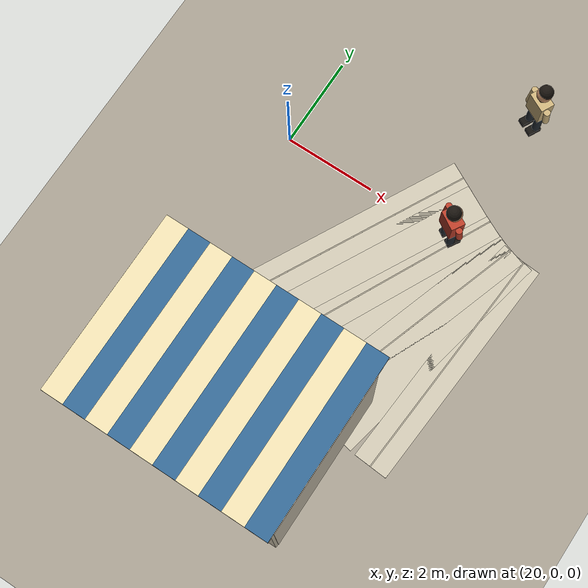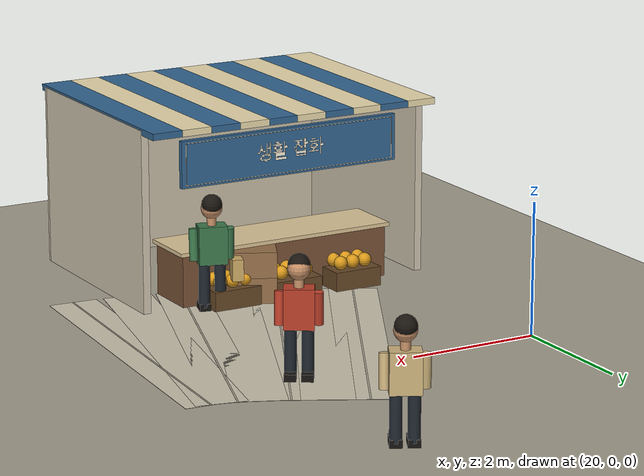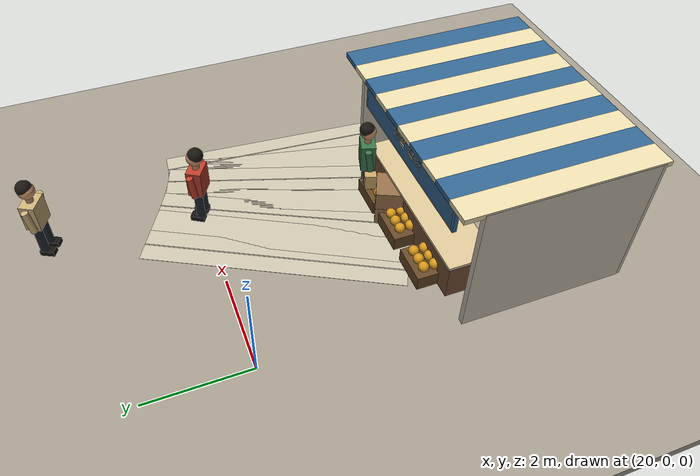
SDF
<sdf version="1.10">
 <world name="swan_town">
  <model name="ground_plane">
   <pose>-14 30 -0.025 0 0 0</pose>
   <static>true</static>
   <link name="link">
    <collision name="collision">
     <geometry><plane><normal>0 0 1</normal><size>100 100</size></plane></geometry>
    </collision>
    <visual name="visual">
     <geometry><plane><normal>0 0 1</normal><size>100 100</size></plane></geometry>
     <material><ambient>0.3 0.5 0.2 1</ambient><diffuse>0.3 0.5 0.2 1</diffuse></material>
    </visual>
   </link>
  </model>
  <model name="ground">
   <static>true</static>
   <pose>15 0 -0.1 0 0 0</pose>
   <link name="body">
    <collision name="box_collision"><geometry><box><size>46 24 0.2</size></box></geometry></collision>
    <visual name="box_visual">
     <geometry><box><size>46 24 0.2</size></box></geometry>
     <material><ambient>0.64 0.61 0.55 1</ambient><diffuse>0.64 0.61 0.55 1</diffuse></material>
    </visual>
   </link>
  </model>
  <model name="market_paving_48">
   <static>true</static>
   <pose>22.25 -1.0326 0.002 0 0 -0.48375</pose>
   <link name="body">
    <visual name="box_visual">
     <geometry><box><size>0.75 5.2 0.004</size></box></geometry>
     <material><ambient>0.79 0.76 0.68 1</ambient><diffuse>0.79 0.76 0.68 1</diffuse></material>
    </visual>
   </link>
  </model>
  <model name="paving_joint_48">
   <static>true</static>
   <pose>22.25 -1.0326 0.0045 0 0 -0.48375</pose>
   <link name="body">
    <visual name="box_visual">
     <geometry><box><size>0.025 5.2 0.001</size></box></geometry>
     <material><ambient>0.67 0.64 0.57 1</ambient><diffuse>0.67 0.64 0.57 1</diffuse></material>
    </visual>
   </link>
  </model>
  <model name="market_paving_49">
   <static>true</static>
   <pose>22.75 -1.2978 0.002 0 0 -0.48699</pose>
   <link name="body">
    <visual name="box_visual">
     <geometry><box><size>0.75 5.2 0.004</size></box></geometry>
     <material><ambient>0.79 0.76 0.68 1</ambient><diffuse>0.79 0.76 0.68 1</diffuse></material>
    </visual>
   </link>
  </model>
  <model name="market_paving_50">
   <static>true</static>
   <pose>23.25 -1.5562 0.002 0 0 -0.46221</pose>
   <link name="body">
    <visual name="box_visual">
     <geometry><box><size>0.75 5.2 0.004</size></box></geometry>
     <material><ambient>0.79 0.76 0.68 1</ambient><diffuse>0.79 0.76 0.68 1</diffuse></material>
    </visual>
   </link>
  </model>
  <model name="paving_joint_50">
   <static>true</static>
   <pose>23.25 -1.5562 0.0045 0 0 -0.46221</pose>
   <link name="body">
    <visual name="box_visual">
     <geometry><box><size>0.025 5.2 0.001</size></box></geometry>
     <material><ambient>0.67 0.64 0.57 1</ambient><diffuse>0.67 0.64 0.57 1</diffuse></material>
    </visual>
   </link>
  </model>
  <model name="market_paving_51">
   <static>true</static>
   <pose>23.75 -1.7901 0.002 0 0 -0.40758</pose>
   <link name="body">
    <visual name="box_visual">
     <geometry><box><size>0.75 5.2 0.004</size></box></geometry>
     <material><ambient>0.79 0.76 0.68 1</ambient><diffuse>0.79 0.76 0.68 1</diffuse></material>
    </visual>
   </link>
  </model>
  <model name="market_paving_52">
   <static>true</static>
   <pose>24.25 -1.9827 0.002 0 0 -0.32217</pose>
   <link name="body">
    <visual name="box_visual">
     <geometry><box><size>0.75 5.2 0.004</size></box></geometry>
     <material><ambient>0.79 0.76 0.68 1</ambient><diffuse>0.79 0.76 0.68 1</diffuse></material>
    </visual>
   </link>
  </model>
  <model name="paving_joint_52">
   <static>true</static>
   <pose>24.25 -1.9827 0.0045 0 0 -0.32217</pose>
   <link name="body">
    <visual name="box_visual">
     <geometry><box><size>0.025 5.2 0.001</size></box></geometry>
     <material><ambient>0.67 0.64 0.57 1</ambient><diffuse>0.67 0.64 0.57 1</diffuse></material>
    </visual>
   </link>
  </model>
  <model name="market_paving_53">
   <static>true</static>
   <pose>24.75 -2.1197 0.002 0 0 -0.2079</pose>
   <link name="body">
    <visual name="box_visual">
     <geometry><box><size>0.75 5.2 0.004</size></box></geometry>
     <material><ambient>0.79 0.76 0.68 1</ambient><diffuse>0.79 0.76 0.68 1</diffuse></material>
    </visual>
   </link>
  </model>
  <model name="market_paving_54">
   <static>true</static>
   <pose>25.25 -2.191 0.002 0 0 -0.072021</pose>
   <link name="body">
    <visual name="box_visual">
     <geometry><box><size>0.75 5.2 0.004</size></box></geometry>
     <material><ambient>0.79 0.76 0.68 1</ambient><diffuse>0.79 0.76 0.68 1</diffuse></material>
    </visual>
   </link>
  </model>
  <model name="paving_joint_54">
   <static>true</static>
   <pose>25.25 -2.191 0.0045 0 0 -0.072021</pose>
   <link name="body">
    <visual name="box_visual">
     <geometry><box><size>0.025 5.2 0.001</size></box></geometry>
     <material><ambient>0.67 0.64 0.57 1</ambient><diffuse>0.67 0.64 0.57 1</diffuse></material>
    </visual>
   </link>
  </model>
  <model name="stall_06">
   <static>true</static>
   <pose>22 -5.3529 0 0 0 0</pose>
   <link name="body">
    <collision name="rear_collision">
     <pose>0 -1.65 1.4 0 0 0</pose>
     <geometry><box><size>4.8 0.15 2.8</size></box></geometry>
    </collision>
    <visual name="rear_visual">
     <pose>0 -1.65 1.4 0 0 0</pose>
     <geometry><box><size>4.8 0.15 2.8</size></box></geometry>
     <material><ambient>0.78 0.74 0.65 1</ambient><diffuse>0.78 0.74 0.65 1</diffuse></material>
    </visual>
    <collision name="side_-2.35_collision">
     <pose>-2.35 0 1.4 0 0 0</pose>
     <geometry><box><size>0.12 3.3 2.8</size></box></geometry>
    </collision>
    <visual name="side_-2.35_visual">
     <pose>-2.35 0 1.4 0 0 0</pose>
     <geometry><box><size>0.12 3.3 2.8</size></box></geometry>
     <material><ambient>0.81 0.77 0.69 1</ambient><diffuse>0.81 0.77 0.69 1</diffuse></material>
    </visual>
    <collision name="side_2.35_collision">
     <pose>2.35 0 1.4 0 0 0</pose>
     <geometry><box><size>0.12 3.3 2.8</size></box></geometry>
    </collision>
    <visual name="side_2.35_visual">
     <pose>2.35 0 1.4 0 0 0</pose>
     <geometry><box><size>0.12 3.3 2.8</size></box></geometry>
     <material><ambient>0.81 0.77 0.69 1</ambient><diffuse>0.81 0.77 0.69 1</diffuse></material>
    </visual>
    <collision name="counter_collision">
     <pose>0 1.22 0.4 0 0 0</pose>
     <geometry><box><size>3.5 0.85 0.8</size></box></geometry>
    </collision>
    <visual name="counter_visual">
     <pose>0 1.22 0.4 0 0 0</pose>
     <geometry><box><size>3.5 0.85 0.8</size></box></geometry>
     <material><ambient>0.47 0.32 0.21 1</ambient><diffuse>0.47 0.32 0.21 1</diffuse></material>
    </visual>
    <collision name="counter_top_collision">
     <pose>0 1.22 0.83 0 0 0</pose>
     <geometry><box><size>3.6 0.95 0.06</size></box></geometry>
    </collision>
    <visual name="counter_top_visual">
     <pose>0 1.22 0.83 0 0 0</pose>
     <geometry><box><size>3.6 0.95 0.06</size></box></geometry>
     <material><ambient>0.86 0.77 0.59 1</ambient><diffuse>0.86 0.77 0.59 1</diffuse></material>
    </visual>
    <collision name="awning_0_collision">
     <pose>-2.16 0.1 2.78 0 0 0</pose>
     <geometry><box><size>0.48 3.85 0.1</size></box></geometry>
    </collision>
    <visual name="awning_0_visual">
     <pose>-2.16 0.1 2.78 0 0 0</pose>
     <geometry><box><size>0.48 3.85 0.1</size></box></geometry>
     <material><ambient>0.92 0.86 0.68 1</ambient><diffuse>0.92 0.86 0.68 1</diffuse></material>
    </visual>
    <collision name="awning_1_collision">
     <pose>-1.68 0.1 2.78 0 0 0</pose>
     <geometry><box><size>0.48 3.85 0.1</size></box></geometry>
    </collision>
    <visual name="awning_1_visual">
     <pose>-1.68 0.1 2.78 0 0 0</pose>
     <geometry><box><size>0.48 3.85 0.1</size></box></geometry>
     <material><ambient>0.2 0.4 0.57 1</ambient><diffuse>0.2 0.4 0.57 1</diffuse></material>
    </visual>
    <collision name="awning_2_collision">
     <pose>-1.2 0.1 2.78 0 0 0</pose>
     <geometry><box><size>0.48 3.85 0.1</size></box></geometry>
    </collision>
    <visual name="awning_2_visual">
     <pose>-1.2 0.1 2.78 0 0 0</pose>
     <geometry><box><size>0.48 3.85 0.1</size></box></geometry>
     <material><ambient>0.92 0.86 0.68 1</ambient><diffuse>0.92 0.86 0.68 1</diffuse></material>
    </visual>
    <collision name="awning_3_collision">
     <pose>-0.72 0.1 2.78 0 0 0</pose>
     <geometry><box><size>0.48 3.85 0.1</size></box></geometry>
    </collision>
    <visual name="awning_3_visual">
     <pose>-0.72 0.1 2.78 0 0 0</pose>
     <geometry><box><size>0.48 3.85 0.1</size></box></geometry>
     <material><ambient>0.2 0.4 0.57 1</ambient><diffuse>0.2 0.4 0.57 1</diffuse></material>
    </visual>
    <collision name="awning_4_collision">
     <pose>-0.24 0.1 2.78 0 0 0</pose>
     <geometry><box><size>0.48 3.85 0.1</size></box></geometry>
    </collision>
    <visual name="awning_4_visual">
     <pose>-0.24 0.1 2.78 0 0 0</pose>
     <geometry><box><size>0.48 3.85 0.1</size></box></geometry>
     <material><ambient>0.92 0.86 0.68 1</ambient><diffuse>0.92 0.86 0.68 1</diffuse></material>
    </visual>
    <collision name="awning_5_collision">
     <pose>0.24 0.1 2.78 0 0 0</pose>
     <geometry><box><size>0.48 3.85 0.1</size></box></geometry>
    </collision>
    <visual name="awning_5_visual">
     <pose>0.24 0.1 2.78 0 0 0</pose>
     <geometry><box><size>0.48 3.85 0.1</size></box></geometry>
     <material><ambient>0.2 0.4 0.57 1</ambient><diffuse>0.2 0.4 0.57 1</diffuse></material>
    </visual>
    <collision name="awning_6_collision">
     <pose>0.72 0.1 2.78 0 0 0</pose>
     <geometry><box><size>0.48 3.85 0.1</size></box></geometry>
    </collision>
    <visual name="awning_6_visual">
     <pose>0.72 0.1 2.78 0 0 0</pose>
     <geometry><box><size>0.48 3.85 0.1</size></box></geometry>
     <material><ambient>0.92 0.86 0.68 1</ambient><diffuse>0.92 0.86 0.68 1</diffuse></material>
    </visual>
    <collision name="awning_7_collision">
     <pose>1.2 0.1 2.78 0 0 0</pose>
     <geometry><box><size>0.48 3.85 0.1</size></box></geometry>
    </collision>
    <visual name="awning_7_visual">
     <pose>1.2 0.1 2.78 0 0 0</pose>
     <geometry><box><size>0.48 3.85 0.1</size></box></geometry>
     <material><ambient>0.2 0.4 0.57 1</ambient><diffuse>0.2 0.4 0.57 1</diffuse></material>
    </visual>
    <collision name="awning_8_collision">
     <pose>1.68 0.1 2.78 0 0 0</pose>
     <geometry><box><size>0.48 3.85 0.1</size></box></geometry>
    </collision>
    <visual name="awning_8_visual">
     <pose>1.68 0.1 2.78 0 0 0</pose>
     <geometry><box><size>0.48 3.85 0.1</size></box></geometry>
     <material><ambient>0.92 0.86 0.68 1</ambient><diffuse>0.92 0.86 0.68 1</diffuse></material>
    </visual>
    <collision name="awning_9_collision">
     <pose>2.16 0.1 2.78 0 0 0</pose>
     <geometry><box><size>0.48 3.85 0.1</size></box></geometry>
    </collision>
    <visual name="awning_9_visual">
     <pose>2.16 0.1 2.78 0 0 0</pose>
     <geometry><box><size>0.48 3.85 0.1</size></box></geometry>
     <material><ambient>0.2 0.4 0.57 1</ambient><diffuse>0.2 0.4 0.57 1</diffuse></material>
    </visual>
    <collision name="crate_-1_collision">
     <pose>-1.04 1.77 0.15 0 0 0</pose>
     <geometry><box><size>0.78 0.6 0.3</size></box></geometry>
    </collision>
    <visual name="crate_-1_visual">
     <pose>-1.04 1.77 0.15 0 0 0</pose>
     <geometry><box><size>0.78 0.6 0.3</size></box></geometry>
     <material><ambient>0.4 0.28 0.15 1</ambient><diffuse>0.4 0.28 0.15 1</diffuse></material>
    </visual>
    <visual name="produce_-1_0_visual">
     <pose>-1.25 1.66 0.39 0 0 0</pose>
     <geometry><sphere><radius>0.105</radius></sphere></geometry>
     <material><ambient>0.84 0.59 0.1 1</ambient><diffuse>0.84 0.59 0.1 1</diffuse></material>
    </visual>
    <visual name="produce_-1_1_visual">
     <pose>-1.04 1.66 0.39 0 0 0</pose>
     <geometry><sphere><radius>0.105</radius></sphere></geometry>
     <material><ambient>0.84 0.59 0.1 1</ambient><diffuse>0.84 0.59 0.1 1</diffuse></material>
    </visual>
    <visual name="produce_-1_2_visual">
     <pose>-0.83 1.66 0.39 0 0 0</pose>
     <geometry><sphere><radius>0.105</radius></sphere></geometry>
     <material><ambient>0.84 0.59 0.1 1</ambient><diffuse>0.84 0.59 0.1 1</diffuse></material>
    </visual>
    <visual name="produce_-1_3_visual">
     <pose>-1.25 1.88 0.39 0 0 0</pose>
     <geometry><sphere><radius>0.105</radius></sphere></geometry>
     <material><ambient>0.84 0.59 0.1 1</ambient><diffuse>0.84 0.59 0.1 1</diffuse></material>
    </visual>
    <visual name="produce_-1_4_visual">
     <pose>-1.04 1.88 0.39 0 0 0</pose>
     <geometry><sphere><radius>0.105</radius></sphere></geometry>
     <material><ambient>0.84 0.59 0.1 1</ambient><diffuse>0.84 0.59 0.1 1</diffuse></material>
    </visual>
    <visual name="produce_-1_5_visual">
     <pose>-0.83 1.88 0.39 0 0 0</pose>
     <geometry><sphere><radius>0.105</radius></sphere></geometry>
     <material><ambient>0.84 0.59 0.1 1</ambient><diffuse>0.84 0.59 0.1 1</diffuse></material>
    </visual>
    <collision name="crate_0_collision">
     <pose>0 1.77 0.15 0 0 0</pose>
     <geometry><box><size>0.78 0.6 0.3</size></box></geometry>
    </collision>
    <visual name="crate_0_visual">
     <pose>0 1.77 0.15 0 0 0</pose>
     <geometry><box><size>0.78 0.6 0.3</size></box></geometry>
     <material><ambient>0.4 0.28 0.15 1</ambient><diffuse>0.4 0.28 0.15 1</diffuse></material>
    </visual>
    <visual name="produce_0_0_visual">
     <pose>-0.21 1.66 0.39 0 0 0</pose>
     <geometry><sphere><radius>0.105</radius></sphere></geometry>
     <material><ambient>0.84 0.59 0.1 1</ambient><diffuse>0.84 0.59 0.1 1</diffuse></material>
    </visual>
    <visual name="produce_0_1_visual">
     <pose>0 1.66 0.39 0 0 0</pose>
     <geometry><sphere><radius>0.105</radius></sphere></geometry>
     <material><ambient>0.84 0.59 0.1 1</ambient><diffuse>0.84 0.59 0.1 1</diffuse></material>
    </visual>
    <visual name="produce_0_2_visual">
     <pose>0.21 1.66 0.39 0 0 0</pose>
     <geometry><sphere><radius>0.105</radius></sphere></geometry>
     <material><ambient>0.84 0.59 0.1 1</ambient><diffuse>0.84 0.59 0.1 1</diffuse></material>
    </visual>
    <visual name="produce_0_3_visual">
     <pose>-0.21 1.88 0.39 0 0 0</pose>
     <geometry><sphere><radius>0.105</radius></sphere></geometry>
     <material><ambient>0.84 0.59 0.1 1</ambient><diffuse>0.84 0.59 0.1 1</diffuse></material>
    </visual>
    <visual name="produce_0_4_visual">
     <pose>0 1.88 0.39 0 0 0</pose>
     <geometry><sphere><radius>0.105</radius></sphere></geometry>
     <material><ambient>0.84 0.59 0.1 1</ambient><diffuse>0.84 0.59 0.1 1</diffuse></material>
    </visual>
    <visual name="produce_0_5_visual">
     <pose>0.21 1.88 0.39 0 0 0</pose>
     <geometry><sphere><radius>0.105</radius></sphere></geometry>
     <material><ambient>0.84 0.59 0.1 1</ambient><diffuse>0.84 0.59 0.1 1</diffuse></material>
    </visual>
    <collision name="crate_1_collision">
     <pose>1.04 1.77 0.15 0 0 0</pose>
     <geometry><box><size>0.78 0.6 0.3</size></box></geometry>
    </collision>
    <visual name="crate_1_visual">
     <pose>1.04 1.77 0.15 0 0 0</pose>
     <geometry><box><size>0.78 0.6 0.3</size></box></geometry>
     <material><ambient>0.4 0.28 0.15 1</ambient><diffuse>0.4 0.28 0.15 1</diffuse></material>
    </visual>
    <visual name="produce_1_0_visual">
     <pose>0.83 1.66 0.39 0 0 0</pose>
     <geometry><sphere><radius>0.105</radius></sphere></geometry>
     <material><ambient>0.84 0.59 0.1 1</ambient><diffuse>0.84 0.59 0.1 1</diffuse></material>
    </visual>
    <visual name="produce_1_1_visual">
     <pose>1.04 1.66 0.39 0 0 0</pose>
     <geometry><sphere><radius>0.105</radius></sphere></geometry>
     <material><ambient>0.84 0.59 0.1 1</ambient><diffuse>0.84 0.59 0.1 1</diffuse></material>
    </visual>
    <visual name="produce_1_2_visual">
     <pose>1.25 1.66 0.39 0 0 0</pose>
     <geometry><sphere><radius>0.105</radius></sphere></geometry>
     <material><ambient>0.84 0.59 0.1 1</ambient><diffuse>0.84 0.59 0.1 1</diffuse></material>
    </visual>
    <visual name="produce_1_3_visual">
     <pose>0.83 1.88 0.39 0 0 0</pose>
     <geometry><sphere><radius>0.105</radius></sphere></geometry>
     <material><ambient>0.84 0.59 0.1 1</ambient><diffuse>0.84 0.59 0.1 1</diffuse></material>
    </visual>
    <visual name="produce_1_4_visual">
     <pose>1.04 1.88 0.39 0 0 0</pose>
     <geometry><sphere><radius>0.105</radius></sphere></geometry>
     <material><ambient>0.84 0.59 0.1 1</ambient><diffuse>0.84 0.59 0.1 1</diffuse></material>
    </visual>
    <visual name="produce_1_5_visual">
     <pose>1.25 1.88 0.39 0 0 0</pose>
     <geometry><sphere><radius>0.105</radius></sphere></geometry>
     <material><ambient>0.84 0.59 0.1 1</ambient><diffuse>0.84 0.59 0.1 1</diffuse></material>
    </visual>
   </link>
  </model>
  <model name="signboard_6">
   <static>true</static>
   <pose>22 -3.5929 2.24 0 0 0</pose>
   <link name="body">
    <collision name="box_collision"><geometry><box><size>3.65 0.08 0.72</size></box></geometry></collision>
    <visual name="box_visual">
     <geometry><box><size>3.65 0.08 0.72</size></box></geometry>
     <material><ambient>0.2 0.4 0.57 1</ambient><diffuse>0.2 0.4 0.57 1</diffuse></material>
    </visual>
   </link>
  </model>
  <model name="sign_shop_6">
   <static>true</static>
   <pose>22 -3.5449 2.24 0 0 -3.14158530718</pose>
   <link name="body">
    <visual name="top_visual">
     <pose>0 -0.003 0.32062 0 0 0</pose>
     <geometry><box><size>3.5136 0.003 0.0108</size></box></geometry>
     <material><ambient>1 0.961 0.875 1</ambient><diffuse>1 0.961 0.875 1</diffuse></material>
    </visual>
    <visual name="bottom_visual">
     <pose>0 -0.003 -0.32062 0 0 0</pose>
     <geometry><box><size>3.5136 0.003 0.0108</size></box></geometry>
     <material><ambient>1 0.961 0.875 1</ambient><diffuse>1 0.961 0.875 1</diffuse></material>
    </visual>
    <visual name="left_visual">
     <pose>-1.7568 -0.003 0 0 0 0</pose>
     <geometry><box><size>0.0108 0.003 0.64125</size></box></geometry>
     <material><ambient>1 0.961 0.875 1</ambient><diffuse>1 0.961 0.875 1</diffuse></material>
    </visual>
    <visual name="right_visual">
     <pose>1.7568 -0.003 0 0 0 0</pose>
     <geometry><box><size>0.0108 0.003 0.64125</size></box></geometry>
     <material><ambient>1 0.961 0.875 1</ambient><diffuse>1 0.961 0.875 1</diffuse></material>
    </visual>
    <visual name="ink_0_visual">
     <pose>-0.225 -0.003 0.15938 0 0 0</pose>
     <geometry><box><size>0.075 0.003 0.01875</size></box></geometry>
     <material><ambient>1 0.961 0.875 1</ambient><diffuse>1 0.961 0.875 1</diffuse></material>
    </visual>
    <visual name="ink_1_visual">
     <pose>-0.21562 -0.003 0.14062 0 0 0</pose>
     <geometry><box><size>0.05625 0.003 0.01875</size></box></geometry>
     <material><ambient>1 0.961 0.875 1</ambient><diffuse>1 0.961 0.875 1</diffuse></material>
    </visual>
    <visual name="ink_2_visual">
     <pose>0.13125 -0.003 0.14062 0 0 0</pose>
     <geometry><box><size>0.15 0.003 0.01875</size></box></geometry>
     <material><ambient>1 0.961 0.875 1</ambient><diffuse>1 0.961 0.875 1</diffuse></material>
    </visual>
    <visual name="ink_3_visual">
     <pose>0.39375 -0.003 0.14062 0 0 0</pose>
     <geometry><box><size>0.075 0.003 0.01875</size></box></geometry>
     <material><ambient>1 0.961 0.875 1</ambient><diffuse>1 0.961 0.875 1</diffuse></material>
    </visual>
    <visual name="ink_4_visual">
     <pose>-0.34688 -0.003 0.14062 0 0 0</pose>
     <geometry><box><size>0.01875 0.003 0.05625</size></box></geometry>
     <material><ambient>1 0.961 0.875 1</ambient><diffuse>1 0.961 0.875 1</diffuse></material>
    </visual>
    <visual name="ink_5_visual">
     <pose>-0.21562 -0.003 0.12188 0 0 0</pose>
     <geometry><box><size>0.16875 0.003 0.01875</size></box></geometry>
     <material><ambient>1 0.961 0.875 1</ambient><diffuse>1 0.961 0.875 1</diffuse></material>
    </visual>
    <visual name="ink_6_visual">
     <pose>0.24375 -0.003 0.14062 0 0 0</pose>
     <geometry><box><size>0.0375 0.003 0.05625</size></box></geometry>
     <material><ambient>1 0.961 0.875 1</ambient><diffuse>1 0.961 0.875 1</diffuse></material>
    </visual>
    <visual name="ink_7_visual">
     <pose>-0.49687 -0.003 0.12188 0 0 0</pose>
     <geometry><box><size>0.01875 0.003 0.05625</size></box></geometry>
     <material><ambient>1 0.961 0.875 1</ambient><diffuse>1 0.961 0.875 1</diffuse></material>
    </visual>
    <visual name="ink_8_visual">
     <pose>-0.40313 -0.003 0.13125 0 0 0</pose>
     <geometry><box><size>0.01875 0.003 0.075</size></box></geometry>
     <material><ambient>1 0.961 0.875 1</ambient><diffuse>1 0.961 0.875 1</diffuse></material>
    </visual>
    <visual name="ink_9_visual">
     <pose>-0.35625 -0.003 0.10313 0 0 0</pose>
     <geometry><box><size>0.0375 0.003 0.01875</size></box></geometry>
     <material><ambient>1 0.961 0.875 1</ambient><diffuse>1 0.961 0.875 1</diffuse></material>
    </visual>
    <visual name="ink_10_visual">
     <pose>-0.21562 -0.003 0.10313 0 0 0</pose>
     <geometry><box><size>0.09375 0.003 0.01875</size></box></geometry>
     <material><ambient>1 0.961 0.875 1</ambient><diffuse>1 0.961 0.875 1</diffuse></material>
    </visual>
    <visual name="ink_11_visual">
     <pose>-0.10312 -0.003 0.13125 0 0 0</pose>
     <geometry><box><size>0.01875 0.003 0.075</size></box></geometry>
     <material><ambient>1 0.961 0.875 1</ambient><diffuse>1 0.961 0.875 1</diffuse></material>
    </visual>
    <visual name="ink_12_visual">
     <pose>0.13125 -0.003 0.1125 0 0 0</pose>
     <geometry><box><size>0.0375 0.003 0.0375</size></box></geometry>
     <material><ambient>1 0.961 0.875 1</ambient><diffuse>1 0.961 0.875 1</diffuse></material>
    </visual>
    <visual name="ink_13_visual">
     <pose>0.40312 -0.003 0.10313 0 0 0</pose>
     <geometry><box><size>0.16875 0.003 0.01875</size></box></geometry>
     <material><ambient>1 0.961 0.875 1</ambient><diffuse>1 0.961 0.875 1</diffuse></material>
    </visual>
    <visual name="ink_14_visual">
     <pose>-0.375 -0.003 0.084375 0 0 0</pose>
     <geometry><box><size>0.075 0.003 0.01875</size></box></geometry>
     <material><ambient>1 0.961 0.875 1</ambient><diffuse>1 0.961 0.875 1</diffuse></material>
    </visual>
    <visual name="ink_15_visual">
     <pose>0.12187 -0.003 0.084375 0 0 0</pose>
     <geometry><box><size>0.05625 0.003 0.01875</size></box></geometry>
     <material><ambient>1 0.961 0.875 1</ambient><diffuse>1 0.961 0.875 1</diffuse></material>
    </visual>
    <visual name="ink_16_visual">
     <pose>0.2625 -0.003 0.09375 0 0 0</pose>
     <geometry><box><size>0.075 0.003 0.0375</size></box></geometry>
     <material><ambient>1 0.961 0.875 1</ambient><diffuse>1 0.961 0.875 1</diffuse></material>
    </visual>
    <visual name="ink_17_visual">
     <pose>0.40312 -0.003 0.084375 0 0 0</pose>
     <geometry><box><size>0.01875 0.003 0.01875</size></box></geometry>
     <material><ambient>1 0.961 0.875 1</ambient><diffuse>1 0.961 0.875 1</diffuse></material>
    </visual>
    <visual name="ink_18_visual">
     <pose>-0.49687 -0.003 0.075 0 0 0</pose>
     <geometry><box><size>0.05625 0.003 0.0375</size></box></geometry>
     <material><ambient>1 0.961 0.875 1</ambient><diffuse>1 0.961 0.875 1</diffuse></material>
    </visual>
    <visual name="ink_19_visual">
     <pose>-0.2625 -0.003 0.075 0 0 0</pose>
     <geometry><box><size>0.0375 0.003 0.0375</size></box></geometry>
     <material><ambient>1 0.961 0.875 1</ambient><diffuse>1 0.961 0.875 1</diffuse></material>
    </visual>
    <visual name="ink_20_visual">
     <pose>-0.16875 -0.003 0.075 0 0 0</pose>
     <geometry><box><size>0.0375 0.003 0.0375</size></box></geometry>
     <material><ambient>1 0.961 0.875 1</ambient><diffuse>1 0.961 0.875 1</diffuse></material>
    </visual>
    <visual name="ink_21_visual">
     <pose>-0.084375 -0.003 0.075 0 0 0</pose>
     <geometry><box><size>0.05625 0.003 0.0375</size></box></geometry>
     <material><ambient>1 0.961 0.875 1</ambient><diffuse>1 0.961 0.875 1</diffuse></material>
    </visual>
    <visual name="ink_22_visual">
     <pose>0.10313 -0.003 0.065625 0 0 0</pose>
     <geometry><box><size>0.01875 0.003 0.01875</size></box></geometry>
     <material><ambient>1 0.961 0.875 1</ambient><diffuse>1 0.961 0.875 1</diffuse></material>
    </visual>
    <visual name="ink_23_visual">
     <pose>0.15 -0.003 0.065625 0 0 0</pose>
     <geometry><box><size>0.0375 0.003 0.01875</size></box></geometry>
     <material><ambient>1 0.961 0.875 1</ambient><diffuse>1 0.961 0.875 1</diffuse></material>
    </visual>
    <visual name="ink_24_visual">
     <pose>0.40312 -0.003 0.065625 0 0 0</pose>
     <geometry><box><size>0.09375 0.003 0.01875</size></box></geometry>
     <material><ambient>1 0.961 0.875 1</ambient><diffuse>1 0.961 0.875 1</diffuse></material>
    </visual>
    <visual name="ink_25_visual">
     <pose>0.51562 -0.003 0.1125 0 0 0</pose>
     <geometry><box><size>0.01875 0.003 0.1125</size></box></geometry>
     <material><ambient>1 0.961 0.875 1</ambient><diffuse>1 0.961 0.875 1</diffuse></material>
    </visual>
    <visual name="ink_26_visual">
     <pose>-0.525 -0.003 0.046875 0 0 0</pose>
     <geometry><box><size>0.0375 0.003 0.01875</size></box></geometry>
     <material><ambient>1 0.961 0.875 1</ambient><diffuse>1 0.961 0.875 1</diffuse></material>
    </visual>
    <visual name="ink_27_visual">
     <pose>-0.45938 -0.003 0.046875 0 0 0</pose>
     <geometry><box><size>0.05625 0.003 0.01875</size></box></geometry>
     <material><ambient>1 0.961 0.875 1</ambient><diffuse>1 0.961 0.875 1</diffuse></material>
    </visual>
    <visual name="ink_28_visual">
     <pose>-0.21562 -0.003 0.046875 0 0 0</pose>
     <geometry><box><size>0.09375 0.003 0.01875</size></box></geometry>
     <material><ambient>1 0.961 0.875 1</ambient><diffuse>1 0.961 0.875 1</diffuse></material>
    </visual>
    <visual name="ink_29_visual">
     <pose>0.084375 -0.003 0.046875 0 0 0</pose>
     <geometry><box><size>0.05625 0.003 0.01875</size></box></geometry>
     <material><ambient>1 0.961 0.875 1</ambient><diffuse>1 0.961 0.875 1</diffuse></material>
    </visual>
    <visual name="ink_30_visual">
     <pose>0.17812 -0.003 0.046875 0 0 0</pose>
     <geometry><box><size>0.05625 0.003 0.01875</size></box></geometry>
     <material><ambient>1 0.961 0.875 1</ambient><diffuse>1 0.961 0.875 1</diffuse></material>
    </visual>
    <visual name="ink_31_visual">
     <pose>0.35625 -0.003 0.046875 0 0 0</pose>
     <geometry><box><size>0.0375 0.003 0.01875</size></box></geometry>
     <material><ambient>1 0.961 0.875 1</ambient><diffuse>1 0.961 0.875 1</diffuse></material>
    </visual>
    <visual name="ink_32_visual">
     <pose>-0.54375 -0.003 0.028125 0 0 0</pose>
     <geometry><box><size>0.0375 0.003 0.01875</size></box></geometry>
     <material><ambient>1 0.961 0.875 1</ambient><diffuse>1 0.961 0.875 1</diffuse></material>
    </visual>
    <visual name="ink_33_visual">
     <pose>-0.44062 -0.003 0.028125 0 0 0</pose>
     <geometry><box><size>0.01875 0.003 0.01875</size></box></geometry>
     <material><ambient>1 0.961 0.875 1</ambient><diffuse>1 0.961 0.875 1</diffuse></material>
    </visual>
    <visual name="ink_34_visual">
     <pose>-0.1875 -0.003 0.028125 0 0 0</pose>
     <geometry><box><size>0.1125 0.003 0.01875</size></box></geometry>
     <material><ambient>1 0.961 0.875 1</ambient><diffuse>1 0.961 0.875 1</diffuse></material>
    </visual>
    <visual name="ink_35_visual">
     <pose>0.065625 -0.003 0.028125 0 0 0</pose>
     <geometry><box><size>0.01875 0.003 0.01875</size></box></geometry>
     <material><ambient>1 0.961 0.875 1</ambient><diffuse>1 0.961 0.875 1</diffuse></material>
    </visual>
    <visual name="ink_36_visual">
     <pose>0.1875 -0.003 0.028125 0 0 0</pose>
     <geometry><box><size>0.0375 0.003 0.01875</size></box></geometry>
     <material><ambient>1 0.961 0.875 1</ambient><diffuse>1 0.961 0.875 1</diffuse></material>
    </visual>
    <visual name="ink_37_visual">
     <pose>0.24375 -0.003 0.046875 0 0 0</pose>
     <geometry><box><size>0.0375 0.003 0.05625</size></box></geometry>
     <material><ambient>1 0.961 0.875 1</ambient><diffuse>1 0.961 0.875 1</diffuse></material>
    </visual>
    <visual name="ink_38_visual">
     <pose>0.34687 -0.003 0.028125 0 0 0</pose>
     <geometry><box><size>0.01875 0.003 0.01875</size></box></geometry>
     <material><ambient>1 0.961 0.875 1</ambient><diffuse>1 0.961 0.875 1</diffuse></material>
    </visual>
    <visual name="ink_39_visual">
     <pose>0.45 -0.003 0.0375 0 0 0</pose>
     <geometry><box><size>0.0375 0.003 0.0375</size></box></geometry>
     <material><ambient>1 0.961 0.875 1</ambient><diffuse>1 0.961 0.875 1</diffuse></material>
    </visual>
    <visual name="ink_40_visual">
     <pose>0.53438 -0.003 0.0375 0 0 0</pose>
     <geometry><box><size>0.05625 0.003 0.0375</size></box></geometry>
     <material><ambient>1 0.961 0.875 1</ambient><diffuse>1 0.961 0.875 1</diffuse></material>
    </visual>
    <visual name="ink_41_visual">
     <pose>-0.40313 -0.003 0.0375 0 0 0</pose>
     <geometry><box><size>0.01875 0.003 0.075</size></box></geometry>
     <material><ambient>1 0.961 0.875 1</ambient><diffuse>1 0.961 0.875 1</diffuse></material>
    </visual>
    <visual name="ink_42_visual">
     <pose>-0.34688 -0.003 0.0375 0 0 0</pose>
     <geometry><box><size>0.01875 0.003 0.075</size></box></geometry>
     <material><ambient>1 0.961 0.875 1</ambient><diffuse>1 0.961 0.875 1</diffuse></material>
    </visual>
    <visual name="ink_43_visual">
     <pose>-0.225 -0.003 0.009375 0 0 0</pose>
     <geometry><box><size>0.15 0.003 0.01875</size></box></geometry>
     <material><ambient>1 0.961 0.875 1</ambient><diffuse>1 0.961 0.875 1</diffuse></material>
    </visual>
    <visual name="ink_44_visual">
     <pose>-0.10312 -0.003 0.028125 0 0 0</pose>
     <geometry><box><size>0.01875 0.003 0.05625</size></box></geometry>
     <material><ambient>1 0.961 0.875 1</ambient><diffuse>1 0.961 0.875 1</diffuse></material>
    </visual>
    <visual name="ink_45_visual">
     <pose>0.10313 -0.003 0.009375 0 0 0</pose>
     <geometry><box><size>0.01875 0.003 0.01875</size></box></geometry>
     <material><ambient>1 0.961 0.875 1</ambient><diffuse>1 0.961 0.875 1</diffuse></material>
    </visual>
    <visual name="ink_46_visual">
     <pose>0.39375 -0.003 0.009375 0 0 0</pose>
     <geometry><box><size>0.1125 0.003 0.01875</size></box></geometry>
     <material><ambient>1 0.961 0.875 1</ambient><diffuse>1 0.961 0.875 1</diffuse></material>
    </visual>
    <visual name="ink_47_visual">
     <pose>-0.42188 -0.003 -0.009375 0 0 0</pose>
     <geometry><box><size>0.13125 0.003 0.01875</size></box></geometry>
     <material><ambient>1 0.961 0.875 1</ambient><diffuse>1 0.961 0.875 1</diffuse></material>
    </visual>
    <visual name="ink_48_visual">
     <pose>0.09375 -0.003 -0.009375 0 0 0</pose>
     <geometry><box><size>0.0375 0.003 0.01875</size></box></geometry>
     <material><ambient>1 0.961 0.875 1</ambient><diffuse>1 0.961 0.875 1</diffuse></material>
    </visual>
    <visual name="ink_49_visual">
     <pose>0.24375 -0.003 -0.009375 0 0 0</pose>
     <geometry><box><size>0.0375 0.003 0.01875</size></box></geometry>
     <material><ambient>1 0.961 0.875 1</ambient><diffuse>1 0.961 0.875 1</diffuse></material>
    </visual>
    <visual name="ink_50_visual">
     <pose>0.40312 -0.003 -0.009375 0 0 0</pose>
     <geometry><box><size>0.05625 0.003 0.01875</size></box></geometry>
     <material><ambient>1 0.961 0.875 1</ambient><diffuse>1 0.961 0.875 1</diffuse></material>
    </visual>
    <visual name="ink_51_visual">
     <pose>-0.47813 -0.003 -0.028125 0 0 0</pose>
     <geometry><box><size>0.05625 0.003 0.01875</size></box></geometry>
     <material><ambient>1 0.961 0.875 1</ambient><diffuse>1 0.961 0.875 1</diffuse></material>
    </visual>
    <visual name="ink_52_visual">
     <pose>-0.36563 -0.003 -0.028125 0 0 0</pose>
     <geometry><box><size>0.05625 0.003 0.01875</size></box></geometry>
     <material><ambient>1 0.961 0.875 1</ambient><diffuse>1 0.961 0.875 1</diffuse></material>
    </visual>
    <visual name="ink_53_visual">
     <pose>0.39375 -0.003 -0.028125 0 0 0</pose>
     <geometry><box><size>0.0375 0.003 0.01875</size></box></geometry>
     <material><ambient>1 0.961 0.875 1</ambient><diffuse>1 0.961 0.875 1</diffuse></material>
    </visual>
    <visual name="ink_54_visual">
     <pose>-0.34688 -0.003 -0.046875 0 0 0</pose>
     <geometry><box><size>0.01875 0.003 0.01875</size></box></geometry>
     <material><ambient>1 0.961 0.875 1</ambient><diffuse>1 0.961 0.875 1</diffuse></material>
    </visual>
    <visual name="ink_55_visual">
     <pose>-0.17813 -0.003 -0.028125 0 0 0</pose>
     <geometry><box><size>0.16875 0.003 0.05625</size></box></geometry>
     <material><ambient>1 0.961 0.875 1</ambient><diffuse>1 0.961 0.875 1</diffuse></material>
    </visual>
    <visual name="ink_56_visual">
     <pose>0.17812 -0.003 -0.0375 0 0 0</pose>
     <geometry><box><size>0.16875 0.003 0.0375</size></box></geometry>
     <material><ambient>1 0.961 0.875 1</ambient><diffuse>1 0.961 0.875 1</diffuse></material>
    </visual>
    <visual name="ink_57_visual">
     <pose>0.40312 -0.003 -0.046875 0 0 0</pose>
     <geometry><box><size>0.16875 0.003 0.01875</size></box></geometry>
     <material><ambient>1 0.961 0.875 1</ambient><diffuse>1 0.961 0.875 1</diffuse></material>
    </visual>
    <visual name="ink_58_visual">
     <pose>-0.50625 -0.003 -0.05625 0 0 0</pose>
     <geometry><box><size>0.0375 0.003 0.0375</size></box></geometry>
     <material><ambient>1 0.961 0.875 1</ambient><diffuse>1 0.961 0.875 1</diffuse></material>
    </visual>
    <visual name="ink_59_visual">
     <pose>-0.35625 -0.003 -0.065625 0 0 0</pose>
     <geometry><box><size>0.0375 0.003 0.01875</size></box></geometry>
     <material><ambient>1 0.961 0.875 1</ambient><diffuse>1 0.961 0.875 1</diffuse></material>
    </visual>
    <visual name="ink_60_visual">
     <pose>-0.24375 -0.003 -0.065625 0 0 0</pose>
     <geometry><box><size>0.0375 0.003 0.01875</size></box></geometry>
     <material><ambient>1 0.961 0.875 1</ambient><diffuse>1 0.961 0.875 1</diffuse></material>
    </visual>
    <visual name="ink_61_visual">
     <pose>0.10313 -0.003 -0.065625 0 0 0</pose>
     <geometry><box><size>0.01875 0.003 0.01875</size></box></geometry>
     <material><ambient>1 0.961 0.875 1</ambient><diffuse>1 0.961 0.875 1</diffuse></material>
    </visual>
    <visual name="ink_62_visual">
     <pose>0.24375 -0.003 -0.065625 0 0 0</pose>
     <geometry><box><size>0.0375 0.003 0.01875</size></box></geometry>
     <material><ambient>1 0.961 0.875 1</ambient><diffuse>1 0.961 0.875 1</diffuse></material>
    </visual>
    <visual name="ink_63_visual">
     <pose>-0.43125 -0.003 -0.084375 0 0 0</pose>
     <geometry><box><size>0.15 0.003 0.01875</size></box></geometry>
     <material><ambient>1 0.961 0.875 1</ambient><diffuse>1 0.961 0.875 1</diffuse></material>
    </visual>
    <visual name="ink_64_visual">
     <pose>0.17812 -0.003 -0.084375 0 0 0</pose>
     <geometry><box><size>0.16875 0.003 0.01875</size></box></geometry>
     <material><ambient>1 0.961 0.875 1</ambient><diffuse>1 0.961 0.875 1</diffuse></material>
    </visual>
    <visual name="ink_65_visual">
     <pose>-0.42188 -0.003 -0.10313 0 0 0</pose>
     <geometry><box><size>0.05625 0.003 0.01875</size></box></geometry>
     <material><ambient>1 0.961 0.875 1</ambient><diffuse>1 0.961 0.875 1</diffuse></material>
    </visual>
    <visual name="ink_66_visual">
     <pose>-0.16875 -0.003 -0.09375 0 0 0</pose>
     <geometry><box><size>0.1875 0.003 0.0375</size></box></geometry>
     <material><ambient>1 0.961 0.875 1</ambient><diffuse>1 0.961 0.875 1</diffuse></material>
    </visual>
    <visual name="ink_67_visual">
     <pose>0.51562 -0.003 -0.046875 0 0 0</pose>
     <geometry><box><size>0.01875 0.003 0.13125</size></box></geometry>
     <material><ambient>1 0.961 0.875 1</ambient><diffuse>1 0.961 0.875 1</diffuse></material>
    </visual>
   </link>
  </model>
  <model name="vendor_2">
   <static>true</static>
   <pose>24.024 3.06 0 0 0 -2.0431</pose>
   <link name="body">
    <collision name="leg_-1_collision">
     <pose>0 -0.12 0.4 0 0 0</pose>
     <geometry><cylinder><radius>0.085</radius><length>0.68</length></cylinder></geometry>
    </collision>
    <visual name="leg_-1_visual">
     <pose>0 -0.12 0.4 0 0 0</pose>
     <geometry><cylinder><radius>0.085</radius><length>0.68</length></cylinder></geometry>
     <material><ambient>0.12 0.15 0.18 1</ambient><diffuse>0.12 0.15 0.18 1</diffuse></material>
    </visual>
    <collision name="shoe_-1_collision">
     <pose>0.06 -0.12 0.055 0 0 0</pose>
     <geometry><box><size>0.28 0.17 0.11</size></box></geometry>
    </collision>
    <visual name="shoe_-1_visual">
     <pose>0.06 -0.12 0.055 0 0 0</pose>
     <geometry><box><size>0.28 0.17 0.11</size></box></geometry>
     <material><ambient>0.08 0.07 0.06 1</ambient><diffuse>0.08 0.07 0.06 1</diffuse></material>
    </visual>
    <collision name="arm_-1_collision">
     <pose>0.02 -0.27 1.02 0 -0.12 0</pose>
     <geometry><cylinder><radius>0.068</radius><length>0.48</length></cylinder></geometry>
    </collision>
    <visual name="arm_-1_visual">
     <pose>0.02 -0.27 1.02 0 -0.12 0</pose>
     <geometry><cylinder><radius>0.068</radius><length>0.48</length></cylinder></geometry>
     <material><ambient>0.79 0.69 0.48 1</ambient><diffuse>0.79 0.69 0.48 1</diffuse></material>
    </visual>
    <collision name="leg_1_collision">
     <pose>0 0.12 0.4 0 0 0</pose>
     <geometry><cylinder><radius>0.085</radius><length>0.68</length></cylinder></geometry>
    </collision>
    <visual name="leg_1_visual">
     <pose>0 0.12 0.4 0 0 0</pose>
     <geometry><cylinder><radius>0.085</radius><length>0.68</length></cylinder></geometry>
     <material><ambient>0.12 0.15 0.18 1</ambient><diffuse>0.12 0.15 0.18 1</diffuse></material>
    </visual>
    <collision name="shoe_1_collision">
     <pose>0.06 0.12 0.055 0 0 0</pose>
     <geometry><box><size>0.28 0.17 0.11</size></box></geometry>
    </collision>
    <visual name="shoe_1_visual">
     <pose>0.06 0.12 0.055 0 0 0</pose>
     <geometry><box><size>0.28 0.17 0.11</size></box></geometry>
     <material><ambient>0.08 0.07 0.06 1</ambient><diffuse>0.08 0.07 0.06 1</diffuse></material>
    </visual>
    <collision name="arm_1_collision">
     <pose>0.02 0.27 1.02 0 0.12 0</pose>
     <geometry><cylinder><radius>0.068</radius><length>0.48</length></cylinder></geometry>
    </collision>
    <visual name="arm_1_visual">
     <pose>0.02 0.27 1.02 0 0.12 0</pose>
     <geometry><cylinder><radius>0.068</radius><length>0.48</length></cylinder></geometry>
     <material><ambient>0.79 0.69 0.48 1</ambient><diffuse>0.79 0.69 0.48 1</diffuse></material>
    </visual>
    <collision name="torso_collision">
     <pose>0 0 1.02 0 0 0</pose>
     <geometry><box><size>0.3 0.43 0.58</size></box></geometry>
    </collision>
    <visual name="torso_visual">
     <pose>0 0 1.02 0 0 0</pose>
     <geometry><box><size>0.3 0.43 0.58</size></box></geometry>
     <material><ambient>0.79 0.69 0.48 1</ambient><diffuse>0.79 0.69 0.48 1</diffuse></material>
    </visual>
    <visual name="neck_visual">
     <pose>0 0 1.37 0 0 0</pose>
     <geometry><cylinder><radius>0.07</radius><length>0.13</length></cylinder></geometry>
     <material><ambient>0.77 0.56 0.4 1</ambient><diffuse>0.77 0.56 0.4 1</diffuse></material>
    </visual>
    <collision name="head_collision">
     <pose>0 0 1.57 0 0 0</pose>
     <geometry><sphere><radius>0.16</radius></sphere></geometry>
    </collision>
    <visual name="head_visual">
     <pose>0 0 1.57 0 0 0</pose>
     <geometry><sphere><radius>0.16</radius></sphere></geometry>
     <material><ambient>0.77 0.56 0.4 1</ambient><diffuse>0.77 0.56 0.4 1</diffuse></material>
    </visual>
    <visual name="hair_visual">
     <pose>-0.025 0 1.63 0 0 0</pose>
     <geometry><sphere><radius>0.155</radius></sphere></geometry>
     <material><ambient>0.1 0.08 0.06 1</ambient><diffuse>0.1 0.08 0.06 1</diffuse></material>
    </visual>
   </link>
  </model>
  <model name="stock_stack_2_0">
   <static>true</static>
   <pose>22.587 -3.6237 0.2 0 0 -0.43872</pose>
   <link name="body">
    <collision name="box_collision"><geometry><box><size>0.65 0.6 0.4</size></box></geometry></collision>
    <visual name="box_visual">
     <geometry><box><size>0.65 0.6 0.4</size></box></geometry>
     <material><ambient>0.58 0.43 0.28 1</ambient><diffuse>0.58 0.43 0.28 1</diffuse></material>
    </visual>
   </link>
  </model>
  <model name="stock_stack_2_1">
   <static>true</static>
   <pose>22.587 -3.6237 0.6 0 0 -0.43872</pose>
   <link name="body">
    <collision name="box_collision"><geometry><box><size>0.65 0.6 0.4</size></box></geometry></collision>
    <visual name="box_visual">
     <geometry><box><size>0.65 0.6 0.4</size></box></geometry>
     <material><ambient>0.58 0.43 0.28 1</ambient><diffuse>0.58 0.43 0.28 1</diffuse></material>
    </visual>
   </link>
  </model>
  <model name="crowd_08">
   <static>true</static>
   <pose>23.851 -0.011381 0 0 0 1.0273</pose>
   <link name="body">
    <collision name="leg_-1_collision">
     <pose>0 -0.12 0.4 0 0 0</pose>
     <geometry><cylinder><radius>0.085</radius><length>0.68</length></cylinder></geometry>
    </collision>
    <visual name="leg_-1_visual">
     <pose>0 -0.12 0.4 0 0 0</pose>
     <geometry><cylinder><radius>0.085</radius><length>0.68</length></cylinder></geometry>
     <material><ambient>0.12 0.15 0.18 1</ambient><diffuse>0.12 0.15 0.18 1</diffuse></material>
    </visual>
    <collision name="shoe_-1_collision">
     <pose>0.06 -0.12 0.055 0 0 0</pose>
     <geometry><box><size>0.28 0.17 0.11</size></box></geometry>
    </collision>
    <visual name="shoe_-1_visual">
     <pose>0.06 -0.12 0.055 0 0 0</pose>
     <geometry><box><size>0.28 0.17 0.11</size></box></geometry>
     <material><ambient>0.08 0.07 0.06 1</ambient><diffuse>0.08 0.07 0.06 1</diffuse></material>
    </visual>
    <collision name="arm_-1_collision">
     <pose>0.02 -0.27 1.02 0 -0.12 0</pose>
     <geometry><cylinder><radius>0.068</radius><length>0.48</length></cylinder></geometry>
    </collision>
    <visual name="arm_-1_visual">
     <pose>0.02 -0.27 1.02 0 -0.12 0</pose>
     <geometry><cylinder><radius>0.068</radius><length>0.48</length></cylinder></geometry>
     <material><ambient>0.72 0.24 0.16 1</ambient><diffuse>0.72 0.24 0.16 1</diffuse></material>
    </visual>
    <collision name="leg_1_collision">
     <pose>0 0.12 0.4 0 0 0</pose>
     <geometry><cylinder><radius>0.085</radius><length>0.68</length></cylinder></geometry>
    </collision>
    <visual name="leg_1_visual">
     <pose>0 0.12 0.4 0 0 0</pose>
     <geometry><cylinder><radius>0.085</radius><length>0.68</length></cylinder></geometry>
     <material><ambient>0.12 0.15 0.18 1</ambient><diffuse>0.12 0.15 0.18 1</diffuse></material>
    </visual>
    <collision name="shoe_1_collision">
     <pose>0.06 0.12 0.055 0 0 0</pose>
     <geometry><box><size>0.28 0.17 0.11</size></box></geometry>
    </collision>
    <visual name="shoe_1_visual">
     <pose>0.06 0.12 0.055 0 0 0</pose>
     <geometry><box><size>0.28 0.17 0.11</size></box></geometry>
     <material><ambient>0.08 0.07 0.06 1</ambient><diffuse>0.08 0.07 0.06 1</diffuse></material>
    </visual>
    <collision name="arm_1_collision">
     <pose>0.02 0.27 1.02 0 0.12 0</pose>
     <geometry><cylinder><radius>0.068</radius><length>0.48</length></cylinder></geometry>
    </collision>
    <visual name="arm_1_visual">
     <pose>0.02 0.27 1.02 0 0.12 0</pose>
     <geometry><cylinder><radius>0.068</radius><length>0.48</length></cylinder></geometry>
     <material><ambient>0.72 0.24 0.16 1</ambient><diffuse>0.72 0.24 0.16 1</diffuse></material>
    </visual>
    <collision name="torso_collision">
     <pose>0 0 1.02 0 0 0</pose>
     <geometry><box><size>0.3 0.43 0.58</size></box></geometry>
    </collision>
    <visual name="torso_visual">
     <pose>0 0 1.02 0 0 0</pose>
     <geometry><box><size>0.3 0.43 0.58</size></box></geometry>
     <material><ambient>0.72 0.24 0.16 1</ambient><diffuse>0.72 0.24 0.16 1</diffuse></material>
    </visual>
    <visual name="neck_visual">
     <pose>0 0 1.37 0 0 0</pose>
     <geometry><cylinder><radius>0.07</radius><length>0.13</length></cylinder></geometry>
     <material><ambient>0.77 0.56 0.4 1</ambient><diffuse>0.77 0.56 0.4 1</diffuse></material>
    </visual>
    <collision name="head_collision">
     <pose>0 0 1.57 0 0 0</pose>
     <geometry><sphere><radius>0.16</radius></sphere></geometry>
    </collision>
    <visual name="head_visual">
     <pose>0 0 1.57 0 0 0</pose>
     <geometry><sphere><radius>0.16</radius></sphere></geometry>
     <material><ambient>0.77 0.56 0.4 1</ambient><diffuse>0.77 0.56 0.4 1</diffuse></material>
    </visual>
    <visual name="hair_visual">
     <pose>-0.025 0 1.63 0 0 0</pose>
     <geometry><sphere><radius>0.155</radius></sphere></geometry>
     <material><ambient>0.1 0.08 0.06 1</ambient><diffuse>0.1 0.08 0.06 1</diffuse></material>
    </visual>
   </link>
  </model>
  <model name="crowd_09">
   <static>true</static>
   <pose>23.405 -3.4316 0 0 0 -1.8687</pose>
   <link name="body">
    <collision name="leg_-1_collision">
     <pose>0 -0.12 0.4 0 0 0</pose>
     <geometry><cylinder><radius>0.085</radius><length>0.68</length></cylinder></geometry>
    </collision>
    <visual name="leg_-1_visual">
     <pose>0 -0.12 0.4 0 0 0</pose>
     <geometry><cylinder><radius>0.085</radius><length>0.68</length></cylinder></geometry>
     <material><ambient>0.12 0.15 0.18 1</ambient><diffuse>0.12 0.15 0.18 1</diffuse></material>
    </visual>
    <collision name="shoe_-1_collision">
     <pose>0.06 -0.12 0.055 0 0 0</pose>
     <geometry><box><size>0.28 0.17 0.11</size></box></geometry>
    </collision>
    <visual name="shoe_-1_visual">
     <pose>0.06 -0.12 0.055 0 0 0</pose>
     <geometry><box><size>0.28 0.17 0.11</size></box></geometry>
     <material><ambient>0.08 0.07 0.06 1</ambient><diffuse>0.08 0.07 0.06 1</diffuse></material>
    </visual>
    <collision name="arm_-1_collision">
     <pose>0.02 -0.27 1.02 0 -0.12 0</pose>
     <geometry><cylinder><radius>0.068</radius><length>0.48</length></cylinder></geometry>
    </collision>
    <visual name="arm_-1_visual">
     <pose>0.02 -0.27 1.02 0 -0.12 0</pose>
     <geometry><cylinder><radius>0.068</radius><length>0.48</length></cylinder></geometry>
     <material><ambient>0.23 0.46 0.29 1</ambient><diffuse>0.23 0.46 0.29 1</diffuse></material>
    </visual>
    <collision name="leg_1_collision">
     <pose>0 0.12 0.4 0 0 0</pose>
     <geometry><cylinder><radius>0.085</radius><length>0.68</length></cylinder></geometry>
    </collision>
    <visual name="leg_1_visual">
     <pose>0 0.12 0.4 0 0 0</pose>
     <geometry><cylinder><radius>0.085</radius><length>0.68</length></cylinder></geometry>
     <material><ambient>0.12 0.15 0.18 1</ambient><diffuse>0.12 0.15 0.18 1</diffuse></material>
    </visual>
    <collision name="shoe_1_collision">
     <pose>0.06 0.12 0.055 0 0 0</pose>
     <geometry><box><size>0.28 0.17 0.11</size></box></geometry>
    </collision>
    <visual name="shoe_1_visual">
     <pose>0.06 0.12 0.055 0 0 0</pose>
     <geometry><box><size>0.28 0.17 0.11</size></box></geometry>
     <material><ambient>0.08 0.07 0.06 1</ambient><diffuse>0.08 0.07 0.06 1</diffuse></material>
    </visual>
    <collision name="arm_1_collision">
     <pose>0.02 0.27 1.02 0 0.12 0</pose>
     <geometry><cylinder><radius>0.068</radius><length>0.48</length></cylinder></geometry>
    </collision>
    <visual name="arm_1_visual">
     <pose>0.02 0.27 1.02 0 0.12 0</pose>
     <geometry><cylinder><radius>0.068</radius><length>0.48</length></cylinder></geometry>
     <material><ambient>0.23 0.46 0.29 1</ambient><diffuse>0.23 0.46 0.29 1</diffuse></material>
    </visual>
    <collision name="torso_collision">
     <pose>0 0 1.02 0 0 0</pose>
     <geometry><box><size>0.3 0.43 0.58</size></box></geometry>
    </collision>
    <visual name="torso_visual">
     <pose>0 0 1.02 0 0 0</pose>
     <geometry><box><size>0.3 0.43 0.58</size></box></geometry>
     <material><ambient>0.23 0.46 0.29 1</ambient><diffuse>0.23 0.46 0.29 1</diffuse></material>
    </visual>
    <visual name="neck_visual">
     <pose>0 0 1.37 0 0 0</pose>
     <geometry><cylinder><radius>0.07</radius><length>0.13</length></cylinder></geometry>
     <material><ambient>0.77 0.56 0.4 1</ambient><diffuse>0.77 0.56 0.4 1</diffuse></material>
    </visual>
    <collision name="head_collision">
     <pose>0 0 1.57 0 0 0</pose>
     <geometry><sphere><radius>0.16</radius></sphere></geometry>
    </collision>
    <visual name="head_visual">
     <pose>0 0 1.57 0 0 0</pose>
     <geometry><sphere><radius>0.16</radius></sphere></geometry>
     <material><ambient>0.77 0.56 0.4 1</ambient><diffuse>0.77 0.56 0.4 1</diffuse></material>
    </visual>
    <visual name="hair_visual">
     <pose>-0.025 0 1.63 0 0 0</pose>
     <geometry><sphere><radius>0.155</radius></sphere></geometry>
     <material><ambient>0.1 0.08 0.06 1</ambient><diffuse>0.1 0.08 0.06 1</diffuse></material>
    </visual>
    <collision name="shopping_bag_collision">
     <pose>0.04 -0.38 0.6 0 0 0</pose>
     <geometry><box><size>0.24 0.17 0.33</size></box></geometry>
    </collision>
    <visual name="shopping_bag_visual">
     <pose>0.04 -0.38 0.6 0 0 0</pose>
     <geometry><box><size>0.24 0.17 0.33</size></box></geometry>
     <material><ambient>0.78 0.65 0.39 1</ambient><diffuse>0.78 0.65 0.39 1</diffuse></material>
    </visual>
   </link>
  </model>
 </world>
</sdf>
